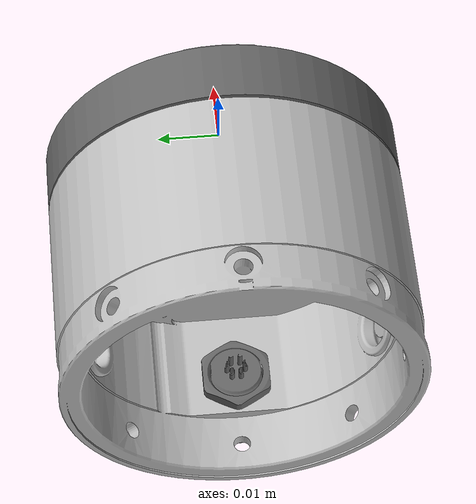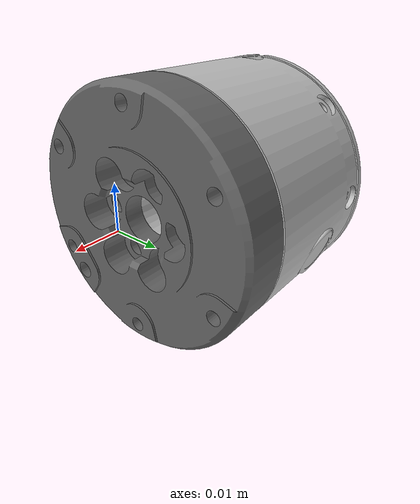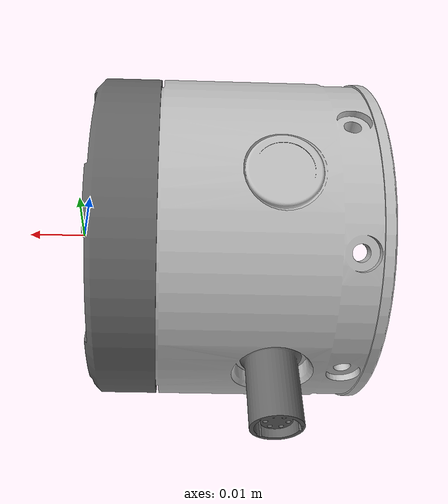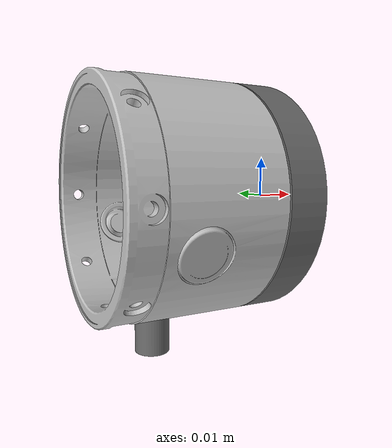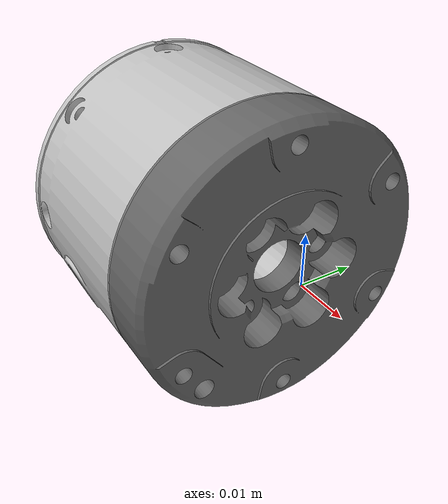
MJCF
<mujoco model="arm_l8">
  <default>
    <default class="visual">
      <geom group="2" type="mesh" contype="0" conaffinity="0"/>
    </default>
    <default class="collision">
      <geom group="3" type="mesh"/>
    </default>
  </default>
  <asset>
    <material name="material_0" specular="0.4000000000000001" shininess="0.001" rgba="0.75294118 0.75294118 0.75294118 1.0"/>
    <material name="material_1" specular="0.4000000000000001" shininess="0.001" rgba="0.40000000 0.40000000 0.40000000 1.0"/>
    <mesh file="arm_l8_1.obj"/>
    <mesh file="arm_l8_2.obj"/>
  </asset>
  <worldbody>
    <body name="arm_l8">
      <geom mesh="arm_l8_1" material="material_1" class="visual"/>
      <geom mesh="arm_l8_2" material="material_0" class="visual"/>
    </body>
  </worldbody>
</mujoco>
